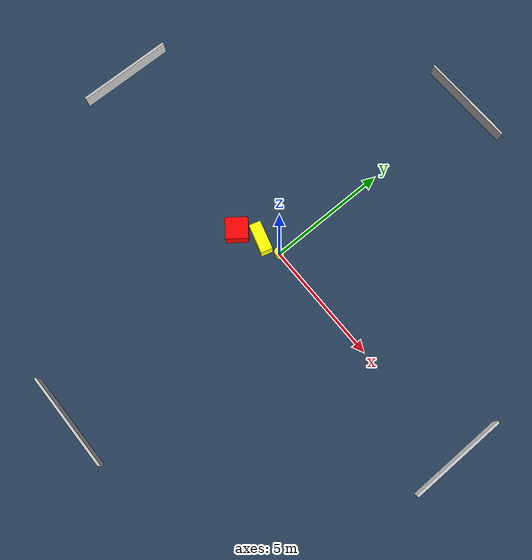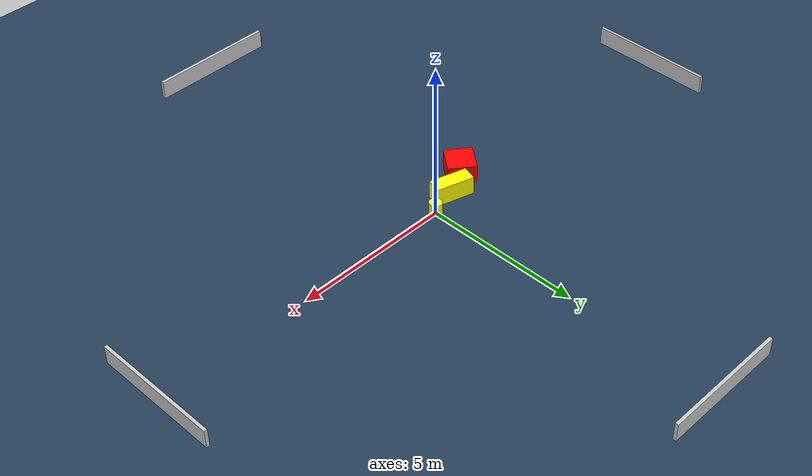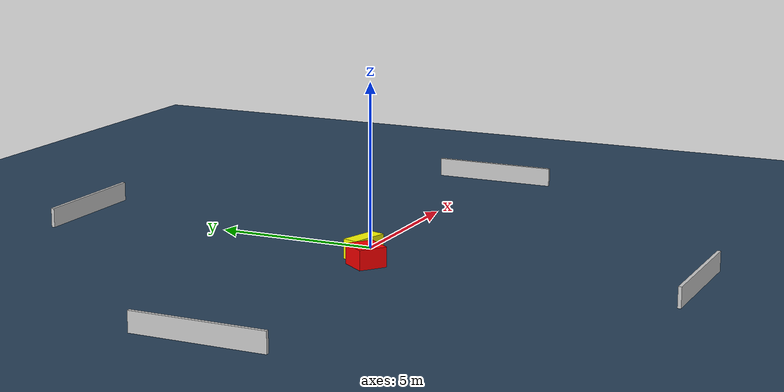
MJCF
<?xml version="1.0" ?>
<mujoco model="generated_environment">
  <option timestep="0.01" integrator="RK4" cone="elliptic"/>
  <default>
    <geom density="1"/>
  </default>
  <asset>
    <texture builtin="gradient" height="3072" name="skybox" rgb1="0.3 0.5 0.7" rgb2="0 0 0" type="skybox" width="512"/>
    <texture builtin="checker" height="300" name="groundplane" rgb1="0.2 0.3 0.4" rgb2="0.1 0.2 0.3" type="2d" width="300"/>
    <material name="groundplane" reflectance="0.2" texrepeat="5 5" texture="groundplane"/>
  </asset>
  <worldbody>
    <light dir="0 0 -1" directional="true" pos="0 0 1.5"/>
    <geom condim="3" friction="0.5 0.005 0.001" material="groundplane" name="floor" pos="0 0 0" size="0 0 0.05" type="plane"/>
    <body name="walls">
      <geom name="wall_1" condim="4" pos="-10.0 0.0 0.3" rgba="0.800000011920929 0.800000011920929 0.800000011920929 1.0" size="0.05 2.0 0.3" type="box"/>
      <geom name="wall_2" condim="4" pos="10.0 0.0 0.3" rgba="0.800000011920929 0.800000011920929 0.800000011920929 1.0" size="0.05 2.0 0.3" type="box"/>
      <geom name="wall_3" condim="4" pos="0.0 -10.0 0.3" rgba="0.800000011920929 0.800000011920929 0.800000011920929 1.0" size="2.0 0.05 0.3" type="box"/>
      <geom name="wall_4" condim="4" pos="0.0 10.0 0.3" rgba="0.800000011920929 0.800000011920929 0.800000011920929 1.0" size="2.0 0.05 0.3" type="box"/>
    </body>
    <body name="robot">
      <joint name="joint_x" type="slide" pos="0 0 0" axis="1 0 0"/>
      <joint name="joint_y" type="slide" pos="0 0 0" axis="0 1 0"/>
      <geom name="robot" type="cylinder" pos="0.0 0.0 0.2" size="0.2 0.2 0.0" mass="5.0" friction="1.0 0.005 0.0001" condim="4" rgba="1.0 1.0 0.0 1.0"/>
    </body>
    <body name="obstacle_1_movable">
      <geom name="obstacle_1_movable" condim="4" pos="-0.8829761905511694 -0.2088450892272022 0.3" euler="0 0 253.65885900156758" friction="0.0 0.005 0.001" rgba="1.0 1.0 0.0 1.0" size="0.24062593589953551 0.6053768934052588 0.3" type="box" mass="0.1"/>
      <joint type="free"/>
    </body>
    <body name="obstacle_2_static">
      <geom name="obstacle_2_static" condim="4" pos="-1.7583788006892935 -0.699776836008409 0.3" euler="0 0 142.70028109632986" friction="0.0 0.005 0.001" rgba="1.0 0.0 0.0 1.0" size="0.43684763993527737 0.44999465536759475 0.3" type="box"/>
    </body>
  </worldbody>
  <actuator>
    <motor name="actuator_x" joint="joint_x" gear="1" ctrlrange="-1 1"/>
    <motor name="actuator_y" joint="joint_y" gear="1" ctrlrange="-1 1"/>
  </actuator>
</mujoco>
